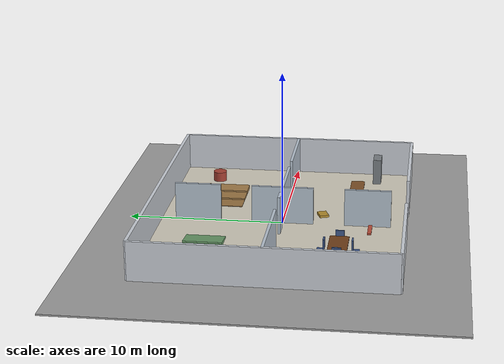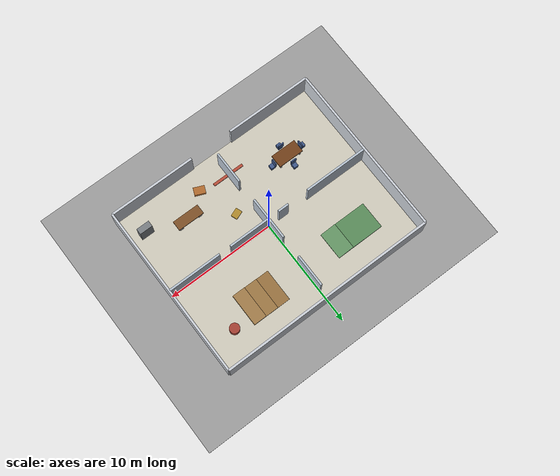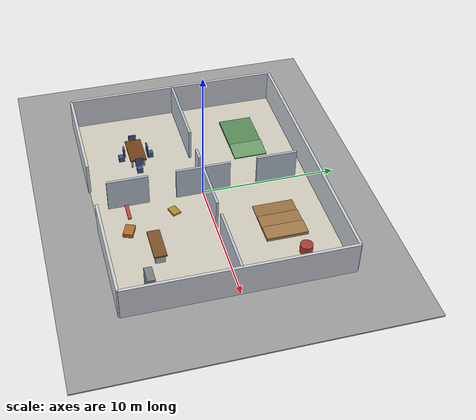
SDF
<?xml version="1.0" ?>
<sdf version="1.9">
  <world name="elevation">
    <physics name="default_physics" type="ignored">
      <max_step_size>0.001</max_step_size>
      <real_time_factor>1.0</real_time_factor>
    </physics>

    <plugin filename="gz-sim-physics-system" name="gz::sim::systems::Physics"/>
    <plugin filename="gz-sim-user-commands-system" name="gz::sim::systems::UserCommands"/>
    <plugin filename="gz-sim-scene-broadcaster-system" name="gz::sim::systems::SceneBroadcaster"/>
    <plugin filename="gz-sim-sensors-system" name="gz::sim::systems::Sensors">
      <render_engine>ogre2</render_engine>
    </plugin>

    <scene>
      <ambient>0.45 0.45 0.45 1</ambient>
      <background>0.75 0.82 0.90 1</background>
      <shadows>true</shadows>
      <grid>true</grid>
    </scene>

    <light type="directional" name="sun">
      <cast_shadows>true</cast_shadows>
      <pose>0 0 10 0 0 0</pose>
      <diffuse>0.9 0.9 0.9 1</diffuse>
      <specular>0.2 0.2 0.2 1</specular>
      <direction>-0.4 0.2 -1</direction>
    </light>

    <model name="ground">
      <static>true</static>
      <pose>0 0 -0.05 0 0 0</pose>
      <link name="link">
        <collision name="collision"><geometry><box><size>30 24 0.1</size></box></geometry></collision>
        <visual name="visual"><geometry><box><size>30 24 0.1</size></box></geometry><material><diffuse>0.62 0.62 0.62 1</diffuse></material></visual>
      </link>
    </model>

    <model name="building_floor">
      <static>true</static>
      <pose>0 0 0.025 0 0 0</pose>
      <link name="link">
        <collision name="collision"><geometry><box><size>20 16 0.05</size></box></geometry></collision>
        <visual name="visual"><geometry><box><size>20 16 0.05</size></box></geometry><material><diffuse>0.82 0.80 0.74 1</diffuse></material></visual>
      </link>
    </model>

    <!-- Outer walls with a 4 m front entrance -->
    <model name="outer_walls">
      <static>true</static>
      <link name="link">
        <collision name="back_c"><pose>0 8 1.25 0 0 0</pose><geometry><box><size>20 0.2 2.5</size></box></geometry></collision>
        <visual name="back_v"><pose>0 8 1.25 0 0 0</pose><geometry><box><size>20 0.2 2.5</size></box></geometry><material><diffuse>0.8 0.82 0.85 1</diffuse></material></visual>
        <collision name="left_c"><pose>-10 0 1.25 0 0 0</pose><geometry><box><size>0.2 16 2.5</size></box></geometry></collision>
        <visual name="left_v"><pose>-10 0 1.25 0 0 0</pose><geometry><box><size>0.2 16 2.5</size></box></geometry><material><diffuse>0.8 0.82 0.85 1</diffuse></material></visual>
        <collision name="right_c"><pose>10 0 1.25 0 0 0</pose><geometry><box><size>0.2 16 2.5</size></box></geometry></collision>
        <visual name="right_v"><pose>10 0 1.25 0 0 0</pose><geometry><box><size>0.2 16 2.5</size></box></geometry><material><diffuse>0.8 0.82 0.85 1</diffuse></material></visual>
        <collision name="front_left_c"><pose>-6 -8 1.25 0 0 0</pose><geometry><box><size>8 0.2 2.5</size></box></geometry></collision>
        <visual name="front_left_v"><pose>-6 -8 1.25 0 0 0</pose><geometry><box><size>8 0.2 2.5</size></box></geometry><material><diffuse>0.8 0.82 0.85 1</diffuse></material></visual>
        <collision name="front_right_c"><pose>6 -8 1.25 0 0 0</pose><geometry><box><size>8 0.2 2.5</size></box></geometry></collision>
        <visual name="front_right_v"><pose>6 -8 1.25 0 0 0</pose><geometry><box><size>8 0.2 2.5</size></box></geometry><material><diffuse>0.8 0.82 0.85 1</diffuse></material></visual>
      </link>
    </model>

    <!-- Internal walls create four rooms and door gaps -->
    <model name="internal_walls">
      <static>true</static>
      <link name="link">
        <collision name="v1c"><pose>0 -5.5 1.25 0 0 0</pose><geometry><box><size>0.18 3 2.5</size></box></geometry></collision>
        <visual name="v1v"><pose>0 -5.5 1.25 0 0 0</pose><geometry><box><size>0.18 3 2.5</size></box></geometry><material><diffuse>0.72 0.77 0.82 1</diffuse></material></visual>
        <collision name="v2c"><pose>0 0 1.25 0 0 0</pose><geometry><box><size>0.18 4 2.5</size></box></geometry></collision>
        <visual name="v2v"><pose>0 0 1.25 0 0 0</pose><geometry><box><size>0.18 4 2.5</size></box></geometry><material><diffuse>0.72 0.77 0.82 1</diffuse></material></visual>
        <collision name="v3c"><pose>0 5.5 1.25 0 0 0</pose><geometry><box><size>0.18 3 2.5</size></box></geometry></collision>
        <visual name="v3v"><pose>0 5.5 1.25 0 0 0</pose><geometry><box><size>0.18 3 2.5</size></box></geometry><material><diffuse>0.72 0.77 0.82 1</diffuse></material></visual>
        <collision name="hl1c"><pose>-7 0 1.25 0 0 0</pose><geometry><box><size>6 0.18 2.5</size></box></geometry></collision>
        <visual name="hl1v"><pose>-7 0 1.25 0 0 0</pose><geometry><box><size>6 0.18 2.5</size></box></geometry><material><diffuse>0.72 0.77 0.82 1</diffuse></material></visual>
        <collision name="hl2c"><pose>-1.5 0 1.25 0 0 0</pose><geometry><box><size>1 0.18 2.5</size></box></geometry></collision>
        <visual name="hl2v"><pose>-1.5 0 1.25 0 0 0</pose><geometry><box><size>1 0.18 2.5</size></box></geometry><material><diffuse>0.72 0.77 0.82 1</diffuse></material></visual>
        <collision name="hr1c"><pose>2 0 1.25 0 0 0</pose><geometry><box><size>3.8 0.18 2.5</size></box></geometry></collision>
        <visual name="hr1v"><pose>2 0 1.25 0 0 0</pose><geometry><box><size>3.8 0.18 2.5</size></box></geometry><material><diffuse>0.72 0.77 0.82 1</diffuse></material></visual>
        <collision name="hr2c"><pose>7.5 0 1.25 0 0 0</pose><geometry><box><size>5 0.18 2.5</size></box></geometry></collision>
        <visual name="hr2v"><pose>7.5 0 1.25 0 0 0</pose><geometry><box><size>5 0.18 2.5</size></box></geometry><material><diffuse>0.72 0.77 0.82 1</diffuse></material></visual>
      </link>
    </model>

    <!-- Dining table -->
    <model name="dining_table">
      <static>true</static><pose>-5 -4 0 0 0 0</pose>
      <link name="link">
        <collision name="top_c"><pose>0 0 0.78 0 0 0</pose><geometry><box><size>2.4 1.2 0.12</size></box></geometry></collision>
        <visual name="top_v"><pose>0 0 0.78 0 0 0</pose><geometry><box><size>2.4 1.2 0.12</size></box></geometry><material><diffuse>0.45 0.25 0.1 1</diffuse></material></visual>
        <collision name="l1c"><pose>-1 -0.45 0.39 0 0 0</pose><geometry><box><size>0.12 0.12 0.78</size></box></geometry></collision>
        <visual name="l1v"><pose>-1 -0.45 0.39 0 0 0</pose><geometry><box><size>0.12 0.12 0.78</size></box></geometry></visual>
        <collision name="l2c"><pose>1 -0.45 0.39 0 0 0</pose><geometry><box><size>0.12 0.12 0.78</size></box></geometry></collision>
        <visual name="l2v"><pose>1 -0.45 0.39 0 0 0</pose><geometry><box><size>0.12 0.12 0.78</size></box></geometry></visual>
        <collision name="l3c"><pose>-1 0.45 0.39 0 0 0</pose><geometry><box><size>0.12 0.12 0.78</size></box></geometry></collision>
        <visual name="l3v"><pose>-1 0.45 0.39 0 0 0</pose><geometry><box><size>0.12 0.12 0.78</size></box></geometry></visual>
        <collision name="l4c"><pose>1 0.45 0.39 0 0 0</pose><geometry><box><size>0.12 0.12 0.78</size></box></geometry></collision>
        <visual name="l4v"><pose>1 0.45 0.39 0 0 0</pose><geometry><box><size>0.12 0.12 0.78</size></box></geometry></visual>
      </link>
    </model>

    <!-- Simple chairs -->
    <model name="chair_1"><static>true</static><pose>-5 -5.1 0 0 0 0</pose><link name="link">
      <collision name="base_c"><pose>0 0 0.22 0 0 0</pose><geometry><box><size>0.42 0.42 0.44</size></box></geometry></collision>
      <visual name="base_v"><pose>0 0 0.22 0 0 0</pose><geometry><box><size>0.42 0.42 0.44</size></box></geometry><material><diffuse>0.25 0.35 0.55 1</diffuse></material></visual>
      <collision name="back_c"><pose>0 0.22 0.8 0 0 0</pose><geometry><box><size>0.55 0.1 0.7</size></box></geometry></collision>
      <visual name="back_v"><pose>0 0.22 0.8 0 0 0</pose><geometry><box><size>0.55 0.1 0.7</size></box></geometry><material><diffuse>0.25 0.35 0.55 1</diffuse></material></visual>
    </link></model>
    <model name="chair_2"><static>true</static><pose>-5 -2.9 0 0 0 3.14159</pose><link name="link">
      <collision name="base_c"><pose>0 0 0.22 0 0 0</pose><geometry><box><size>0.42 0.42 0.44</size></box></geometry></collision>
      <visual name="base_v"><pose>0 0 0.22 0 0 0</pose><geometry><box><size>0.42 0.42 0.44</size></box></geometry><material><diffuse>0.25 0.35 0.55 1</diffuse></material></visual>
      <collision name="back_c"><pose>0 0.22 0.8 0 0 0</pose><geometry><box><size>0.55 0.1 0.7</size></box></geometry></collision>
      <visual name="back_v"><pose>0 0.22 0.8 0 0 0</pose><geometry><box><size>0.55 0.1 0.7</size></box></geometry><material><diffuse>0.25 0.35 0.55 1</diffuse></material></visual>
    </link></model>
    <model name="chair_3"><static>true</static><pose>-6.6 -4 0 0 0 -1.5708</pose><link name="link">
      <collision name="base_c"><pose>0 0 0.22 0 0 0</pose><geometry><box><size>0.42 0.42 0.44</size></box></geometry></collision>
      <visual name="base_v"><pose>0 0 0.22 0 0 0</pose><geometry><box><size>0.42 0.42 0.44</size></box></geometry><material><diffuse>0.25 0.35 0.55 1</diffuse></material></visual>
      <collision name="back_c"><pose>0 0.22 0.8 0 0 0</pose><geometry><box><size>0.55 0.1 0.7</size></box></geometry></collision>
      <visual name="back_v"><pose>0 0.22 0.8 0 0 0</pose><geometry><box><size>0.55 0.1 0.7</size></box></geometry><material><diffuse>0.25 0.35 0.55 1</diffuse></material></visual>
    </link></model>
    <model name="chair_4"><static>true</static><pose>-3.4 -4 0 0 0 1.5708</pose><link name="link">
      <collision name="base_c"><pose>0 0 0.22 0 0 0</pose><geometry><box><size>0.42 0.42 0.44</size></box></geometry></collision>
      <visual name="base_v"><pose>0 0 0.22 0 0 0</pose><geometry><box><size>0.42 0.42 0.44</size></box></geometry><material><diffuse>0.25 0.35 0.55 1</diffuse></material></visual>
      <collision name="back_c"><pose>0 0.22 0.8 0 0 0</pose><geometry><box><size>0.55 0.1 0.7</size></box></geometry></collision>
      <visual name="back_v"><pose>0 0.22 0.8 0 0 0</pose><geometry><box><size>0.55 0.1 0.7</size></box></geometry><material><diffuse>0.25 0.35 0.55 1</diffuse></material></visual>
    </link></model>

    <!-- Office desk and cabinet -->
    <model name="office_desk"><static>true</static><pose>5 -4.5 0 0 0 0</pose><link name="link">
      <collision name="top_c"><pose>0 0 0.75 0 0 0</pose><geometry><box><size>2.5 0.9 0.12</size></box></geometry></collision>
      <visual name="top_v"><pose>0 0 0.75 0 0 0</pose><geometry><box><size>2.5 0.9 0.12</size></box></geometry><material><diffuse>0.5 0.32 0.16 1</diffuse></material></visual>
      <collision name="p1c"><pose>-0.95 0 0.36 0 0 0</pose><geometry><box><size>0.35 0.7 0.72</size></box></geometry></collision>
      <visual name="p1v"><pose>-0.95 0 0.36 0 0 0</pose><geometry><box><size>0.35 0.7 0.72</size></box></geometry></visual>
      <collision name="p2c"><pose>0.95 0 0.36 0 0 0</pose><geometry><box><size>0.35 0.7 0.72</size></box></geometry></collision>
      <visual name="p2v"><pose>0.95 0 0.36 0 0 0</pose><geometry><box><size>0.35 0.7 0.72</size></box></geometry></visual>
    </link></model>
    <model name="cabinet"><static>true</static><pose>8.5 -5.7 0.9 0 0 0</pose><link name="link">
      <collision name="c"><geometry><box><size>1.2 0.55 1.8</size></box></geometry></collision>
      <visual name="v"><geometry><box><size>1.2 0.55 1.8</size></box></geometry><material><diffuse>0.48 0.5 0.52 1</diffuse></material></visual>
    </link></model>

    <!-- Elevation features: platform, ramp, steps, cylinder, low boxes -->
    <model name="low_platform"><static>true</static><pose>-6 4.5 0.12 0 0 0</pose><link name="link">
      <collision name="c"><geometry><box><size>3 2.5 0.24</size></box></geometry></collision>
      <visual name="v"><geometry><box><size>3 2.5 0.24</size></box></geometry><material><diffuse>0.35 0.55 0.35 1</diffuse></material></visual>
    </link></model>
    <model name="ramp"><static>true</static><pose>-3.75 4.5 0.12 0 0.12 0</pose><link name="link">
      <collision name="c"><geometry><box><size>1.5 2.5 0.24</size></box></geometry></collision>
      <visual name="v"><geometry><box><size>1.5 2.5 0.24</size></box></geometry><material><diffuse>0.42 0.62 0.42 1</diffuse></material></visual>
    </link></model>
    <model name="step_1"><static>true</static><pose>3 4.5 0.05 0 0 0</pose><link name="link"><collision name="c"><geometry><box><size>1.2 3 0.1</size></box></geometry></collision><visual name="v"><geometry><box><size>1.2 3 0.1</size></box></geometry><material><diffuse>0.6 0.45 0.25 1</diffuse></material></visual></link></model>
    <model name="step_2"><static>true</static><pose>4.2 4.5 0.1 0 0 0</pose><link name="link"><collision name="c"><geometry><box><size>1.2 3 0.2</size></box></geometry></collision><visual name="v"><geometry><box><size>1.2 3 0.2</size></box></geometry><material><diffuse>0.62 0.47 0.27 1</diffuse></material></visual></link></model>
    <model name="step_3"><static>true</static><pose>5.4 4.5 0.15 0 0 0</pose><link name="link"><collision name="c"><geometry><box><size>1.2 3 0.3</size></box></geometry></collision><visual name="v"><geometry><box><size>1.2 3 0.3</size></box></geometry><material><diffuse>0.64 0.49 0.29 1</diffuse></material></visual></link></model>
    <model name="cylinder_obstacle"><static>true</static><pose>7.5 5.3 0.35 0 0 0</pose><link name="link"><collision name="c"><geometry><cylinder><radius>0.45</radius><length>0.7</length></cylinder></geometry></collision><visual name="v"><geometry><cylinder><radius>0.45</radius><length>0.7</length></cylinder></geometry><material><diffuse>0.65 0.25 0.2 1</diffuse></material></visual></link></model>
    <model name="small_box_1"><static>true</static><pose>1.5 -2.5 0.1 0 0 0.35</pose><link name="link"><collision name="c"><geometry><box><size>0.8 0.6 0.2</size></box></geometry></collision><visual name="v"><geometry><box><size>0.8 0.6 0.2</size></box></geometry><material><diffuse>0.7 0.55 0.18 1</diffuse></material></visual></link></model>
    <model name="small_box_2"><static>true</static><pose>2.8 -6 0.18 0 0 -0.4</pose><link name="link"><collision name="c"><geometry><box><size>1 0.7 0.36</size></box></geometry></collision><visual name="v"><geometry><box><size>1 0.7 0.36</size></box></geometry><material><diffuse>0.7 0.42 0.18 1</diffuse></material></visual></link></model>
    <model name="narrow_beam"><static>true</static><pose>0 -5.7 0.075 0 0 0</pose><link name="link"><collision name="c"><geometry><box><size>3 0.25 0.15</size></box></geometry></collision><visual name="v"><geometry><box><size>3 0.25 0.15</size></box></geometry><material><diffuse>0.72 0.3 0.22 1</diffuse></material></visual></link></model>
  </world>
</sdf>
